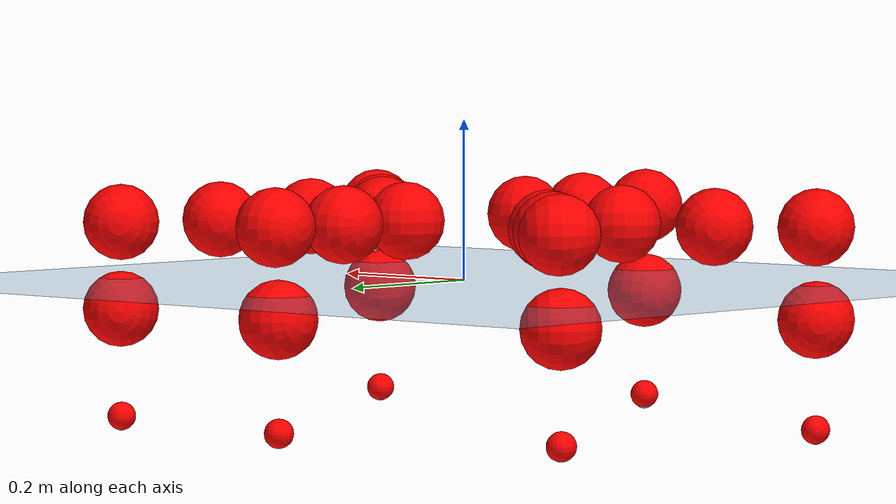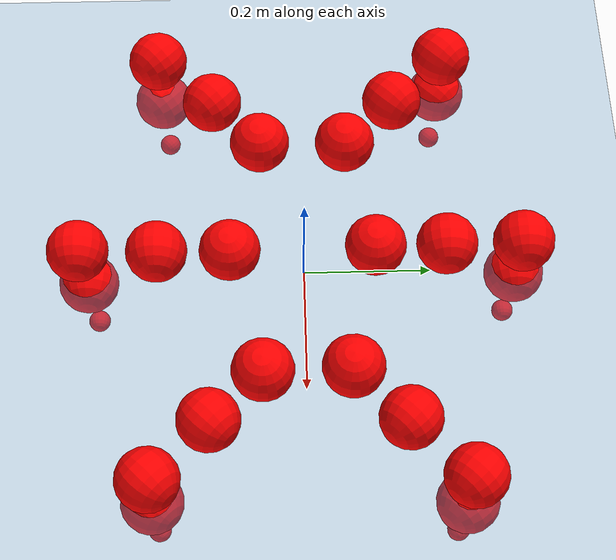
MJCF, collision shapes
<mujoco model="Golem">
  <compiler angle="radian" assetdir="assets" balanceinertia="true" inertiafromgeom="false"/>

  <option timestep="0.005" density="1.2" viscosity="2e-05"/>

  <size nkey="1"/>

  <visual>
    <quality shadowsize="8192"/>
    <map shadowclip="0.5"/>
  </visual>

  <default>
    <default class="/">
      <joint armature="0.01" damping="0.01" frictionloss="0.01"/>
      <geom contype="0" conaffinity="0" group="1" solref="-1000 -80"/>
      <site size="0.01 0.005 0.005" group="5"/>
      <general forcelimited="true" biastype="affine" gainprm="25" biasprm="0 -25 -0.5"/>
      <default class="visual">
        <geom type="mesh" group="2"/>
      </default>
      <default class="collision">
        <geom group="3"/>
      </default>
      <default class="foot">
        <geom size="0.01 0 0" condim="6" group="4" priority="1" solimp="0.015 1 0.01"/>
      </default>
      <default class="reward_collision_sphere">
        <geom group="5" rgba="1 0 0 1"/>
      </default>
    </default>
  </default>

  <asset>
    <texture type="skybox" colorspace="auto" name="//unnamed_texture_0" builtin="gradient" rgb1="0.95 0.95 0.95" rgb2="0.95 0.95 0.95" width="100" height="600"/>
    <texture type="2d" colorspace="auto" name="texplane" builtin="checker" rgb1="0.345 0.575 0.748" rgb2="0.345 0.575 0.748" markrgb="1 1 1" width="512" height="512"/>
    <material name="MatPlane" class="/" texture="texplane" texuniform="true" texrepeat="2 2" specular="0.9"/>
    <mesh name="body" class="/" file="body.stl" scale="0.001 0.001 0.001"/>
    <mesh name="coxa" class="/" file="coxa.stl" scale="0.001 0.001 0.001"/>
    <mesh name="femur" class="/" file="femur.stl" scale="0.001 0.001 0.001"/>
    <mesh name="tibia" class="/" file="tibia.stl" scale="0.001 0.001 0.001"/>
    <mesh name="tarsus" class="/" file="tarsus.stl" scale="0.001 0.001 0.001"/>
  </asset>

  <worldbody>
    <geom name="floor" class="/" size="100 100 0.125" type="plane" group="0" material="MatPlane"/>
    <light name="toplight_shadow" class="/" pos="0 0 5" dir="0.0990148 0.0990148 -0.990148" type="directional" ambient="0.04 0.04 0.04" diffuse="0.55 0.55 0.55" specular="0.12 0.12 0.12"/>
    <light name="toplight_fill" class="/" pos="0 0 5" dir="0.0990148 0.0990148 -0.990148" type="directional" castshadow="false" ambient="0.04 0.04 0.04" diffuse="0.3 0.3 0.3" specular="0.08 0.08 0.08"/>
    <body name="trunk" pos="-0.00115657 0.000177123 -0.00217123" quat="1 -0.000664031 0.000680528 -3.21687e-05">
      <inertial pos="-0.00145711 -0.00297646 0.000919025" quat="0.999967 0.00662686 0.00324111 0.00328805" mass="6.127" diaginertia="0.0299105 0.0192466 0.0223183"/>
      <joint name="//unnamed_joint_0" type="free"/>
      <geom name="//unnamed_geom_1" class="/" pos="0 0 0.0756507" quat="1 0 0 0" type="mesh" rgba="0.9 0.9 0.9 1" mesh="body"/>
      <site name="imu" class="/" pos="0.175817 -0.0134647 0.106533" size="0.0119386"/>
      <camera name="track" class="/" pos="0 -2.27866 0" quat="0.707107 0.707107 0 0" mode="trackcom"/>
      <camera name="ego_camera" class="/" pos="0.163827 0 0.118204" quat="-0.5 -0.5 0.5 0.5"/>
      <body name="coxa_RR" pos="-0.225041 -0.0944797 0.0767012" quat="0.382633 0.000356313 0.000130324 -0.9239">
        <inertial pos="-0.00227538 -0.000489588 -0.00236072" quat="0.999973 0.00730358 0.000288905 -0.00113007" mass="0.339301" diaginertia="0.031323 0.0191673 0.0230464"/>
        <joint name="coxa_joint_RR" class="/" pos="0 0 0" axis="-0.00042445 0.00575336 -0.999983" range="-3.18797 3.10782" armature="0.010471" damping="0" frictionloss="0.0108031"/>
        <geom name="//unnamed_geom_2" class="/" type="mesh" rgba="0.2 0.2 0.2 1" mesh="coxa"/>
        <geom name="//unnamed_geom_3" class="reward_collision_sphere" size="0.0477544" pos="-0.0378061 0 0"/>
        <body name="femur_RR" pos="0.0751144 -0.00356799 -0.00390681" quat="0.499591 -0.49977 0.500952 0.499686">
          <inertial pos="-0.00276804 -0.0014897 -0.00272425" quat="0.999938 -0.00496801 0.00734666 -0.00677555" mass="0.340528" diaginertia="0.0318571 0.0197197 0.0225307"/>
          <joint name="femur_joint_RR" class="/" pos="0 0 0" axis="0.00206586 -0.01558 -0.999876" range="-3.09754 3.13098" armature="0.013536" damping="0.0167829" frictionloss="0.0102475"/>
          <geom name="//unnamed_geom_4" class="/" type="mesh" rgba="0.9 0.9 0.9 1" mesh="femur"/>
          <geom name="//unnamed_geom_5" class="reward_collision_sphere" size="0.0477544"/>
          <body name="tibia_RR" pos="0.000985032 -0.125463 0.0031844" quat="0.000181664 1 0.000239579 -6.92263e-05">
            <inertial pos="0.00192158 0.00259733 -0.00158725" quat="0.99999 -0.00268727 -0.00155206 -0.00331526" mass="0.34932" diaginertia="0.0317146 0.0189158 0.0230296"/>
            <joint name="tibia_joint_RR" class="/" pos="0 0 0" axis="0.00267889 0.00473395 0.999985" stiffness="0.00714829" range="-3.14182 3.13092" armature="0.0124768" damping="0.0017059" frictionloss="0.0110249"/>
            <geom name="//unnamed_geom_6" class="/" type="mesh" rgba="0.2 0.2 0.2 1" mesh="tibia"/>
            <geom name="//unnamed_geom_7" class="reward_collision_sphere" size="0.0477544"/>
            <body name="tarsus_RR" pos="0.113678 0.000457708 -0.000420553" quat="1 -0.000408302 0.000263581 0.000291749">
              <inertial pos="0.0742048 0.00189892 -0.000514766" quat="0.500336 0.49314 0.506987 0.499441" mass="0.343848" diaginertia="0.0313543 0.0186173 0.0236964"/>
              <joint name="tarsus_joint_RR" class="/" pos="0 0 0" axis="-0.0128473 0.0107123 0.99986" range="-3.08764 3.07831" armature="0.0121191" damping="0.00593305" frictionloss="0.0115349"/>
              <geom name="//unnamed_geom_8" class="/" type="mesh" rgba="0.9 0.9 0.9 1" mesh="tarsus"/>
              <geom name="foot_1" class="foot" size="0.012485" pos="0.141143 0 0" quat="0 -0.707107 0 0.707107"/>
              <geom name="//unnamed_geom_10" class="reward_collision_sphere" size="0.0477544"/>
              <geom name="//unnamed_geom_11" class="reward_collision_sphere" size="0.0179079" pos="0.135472 0 0"/>
              <site name="foot_1" class="foot" pos="0.141143 0 0" quat="0 -0.707107 0 0.707107" size="0.0119386"/>
            </body>
          </body>
        </body>
      </body>
      <body name="coxa_RM" pos="0.00128335 -0.152596 0.0810454" quat="0.707264 -3.60488e-05 -0.00116704 -0.706949">
        <inertial pos="0.000517037 -0.00183383 -0.000437294" quat="0.999937 0.00834069 -0.00470349 -0.00590445" mass="0.347147" diaginertia="0.0327756 0.0191855 0.0232561"/>
        <joint name="coxa_joint_RM" class="/" pos="0 0 0" axis="-0.00328035 0.0152162 -0.999879" range="-3.18322 3.17611" armature="0.0115414" damping="0.0238066" frictionloss="0.0111319"/>
        <geom name="//unnamed_geom_12" class="/" type="mesh" rgba="0.2 0.2 0.2 1" mesh="coxa"/>
        <geom name="//unnamed_geom_13" class="reward_collision_sphere" size="0.0477544" pos="-0.0378061 0 0"/>
        <body name="femur_RM" pos="0.0747806 0.000823737 0.000539196" quat="0.500351 -0.50031 0.499705 0.499633">
          <inertial pos="0.00173576 -0.00203857 0.00284295" quat="0.999985 -0.00162506 -0.00265974 -0.00447164" mass="0.337403" diaginertia="0.0311513 0.0190935 0.0236875"/>
          <joint name="femur_joint_RM" class="/" pos="0 0 0" axis="0.009053 0.00636674 -0.999939" stiffness="0.00956634" range="-3.08892 3.11016" armature="0.0135238" damping="0.0265148" frictionloss="0.0125109"/>
          <geom name="//unnamed_geom_14" class="/" type="mesh" rgba="0.9 0.9 0.9 1" mesh="femur"/>
          <geom name="//unnamed_geom_15" class="reward_collision_sphere" size="0.0477544"/>
          <body name="tibia_RM" pos="-0.000584114 -0.120978 -0.00286343" quat="-0.000967674 0.999999 -0.000562491 0.000101415">
            <inertial pos="0.00136484 0.00287602 -0.000690423" quat="1 3.20418e-05 -0.000459419 0.000235863" mass="0.35342" diaginertia="0.0332842 0.0202901 0.0242394"/>
            <joint name="tibia_joint_RM" class="/" pos="0 0 0" axis="0.00453325 0.0062462 0.99997" range="-3.08672 3.15015" armature="0.0108794" damping="0" frictionloss="0.0134026"/>
            <geom name="//unnamed_geom_16" class="/" type="mesh" rgba="0.2 0.2 0.2 1" mesh="tibia"/>
            <geom name="//unnamed_geom_17" class="reward_collision_sphere" size="0.0477544"/>
            <body name="tarsus_RM" pos="0.109821 -0.00397925 0.0015782" quat="1 -0.000526936 0.000692419 -0.000135812">
              <inertial pos="0.0731269 -0.000754556 0.00130965" quat="0.49797 0.499935 0.500423 0.501664" mass="0.353763" diaginertia="0.0334922 0.0197742 0.0245869"/>
              <joint name="tarsus_joint_RM" class="/" pos="0 0 0" axis="0.0107764 -0.0055497 0.999927" range="-3.1254 3.17904" armature="0.0117341" damping="0.00772101" frictionloss="0.0104288"/>
              <geom name="//unnamed_geom_18" class="/" type="mesh" rgba="0.9 0.9 0.9 1" mesh="tarsus"/>
              <geom name="foot_2" class="foot" size="0.0130869" pos="0.141143 0 0" quat="0 -0.707107 0 0.707107"/>
              <geom name="//unnamed_geom_20" class="reward_collision_sphere" size="0.0477544"/>
              <geom name="//unnamed_geom_21" class="reward_collision_sphere" size="0.0179079" pos="0.135472 0 0"/>
              <site name="foot_2" class="foot" pos="0.141143 0 0" quat="0 -0.707107 0 0.707107" size="0.0119386"/>
            </body>
          </body>
        </body>
      </body>
      <body name="coxa_RF" pos="0.228103 -0.0920463 0.076932" quat="0.923807 -0.000653899 -0.000650259 -0.382856">
        <inertial pos="0.00281545 0.00351582 0.00223209" quat="0.999912 -0.0114603 0.00658356 0.00122338" mass="0.336928" diaginertia="0.0314316 0.0201796 0.0242819"/>
        <joint name="coxa_joint_RF" class="/" pos="0 0 0" axis="-0.00529866 0.014404 -0.999882" range="-3.14356 3.15764" armature="0.0113547" damping="0.00659929" frictionloss="0.0124667"/>
        <geom name="//unnamed_geom_22" class="/" type="mesh" rgba="0.2 0.2 0.2 1" mesh="coxa"/>
        <geom name="//unnamed_geom_23" class="reward_collision_sphere" size="0.0477544" pos="-0.0378061 0 0"/>
        <body name="femur_RF" pos="0.0727818 -0.0017232 -0.00178385" quat="0.499942 -0.500089 0.499936 0.500033">
          <inertial pos="0.00189101 -0.000156401 0.000193249" quat="0.999914 -0.00615301 -0.010329 0.00517485" mass="0.346222" diaginertia="0.0316114 0.0203536 0.0237593"/>
          <joint name="femur_joint_RF" class="/" pos="0 0 0" axis="0.00326506 0.00122249 -0.999994" range="-3.16948 3.1845" armature="0.011657" damping="0.00697903" frictionloss="0.0115351"/>
          <geom name="//unnamed_geom_24" class="/" type="mesh" rgba="0.9 0.9 0.9 1" mesh="femur"/>
          <geom name="//unnamed_geom_25" class="reward_collision_sphere" size="0.0477544"/>
          <body name="tibia_RF" pos="-0.000715278 -0.12321 0.0025278" quat="-0.00029418 1 -0.000151367 -0.000319278">
            <inertial pos="0.00114237 -0.00217464 -5.04331e-05" quat="0.999936 -0.00753644 0.00380942 0.00755027" mass="0.324668" diaginertia="0.0320736 0.0187899 0.022887"/>
            <joint name="tibia_joint_RF" class="/" pos="0 0 0" axis="0.000530633 0.00131637 0.999999" range="-3.13892 3.13959" armature="0.0132404" damping="0.00852249" frictionloss="0.0116336"/>
            <geom name="//unnamed_geom_26" class="/" type="mesh" rgba="0.2 0.2 0.2 1" mesh="tibia"/>
            <geom name="//unnamed_geom_27" class="reward_collision_sphere" size="0.0477544"/>
            <body name="tarsus_RF" pos="0.108015 -2.70879e-05 0.00355553" quat="1 3.07007e-05 -0.000926947 0.000304086">
              <inertial pos="0.0786968 0.000784264 0.00261659" quat="0.4898 0.507464 0.504295 0.49826" mass="0.345526" diaginertia="0.0312467 0.0190004 0.0234593"/>
              <joint name="tarsus_joint_RF" class="/" pos="0 0 0" axis="0.000234234 -9.38408e-05 1" range="-3.14942 3.14223" armature="0.0118379" damping="0.000958843" frictionloss="0.0103497"/>
              <geom name="//unnamed_geom_28" class="/" type="mesh" rgba="0.9 0.9 0.9 1" mesh="tarsus"/>
              <geom name="foot_3" class="foot" size="0.0126945" pos="0.141143 0 0" quat="0 -0.707107 0 0.707107"/>
              <geom name="//unnamed_geom_30" class="reward_collision_sphere" size="0.0477544"/>
              <geom name="//unnamed_geom_31" class="reward_collision_sphere" size="0.0179079" pos="0.135472 0 0"/>
              <site name="foot_3" class="foot" pos="0.141143 0 0" quat="0 -0.707107 0 0.707107" size="0.0119386"/>
            </body>
          </body>
        </body>
      </body>
      <body name="coxa_LR" pos="-0.223774 0.0960272 0.075828" quat="0.383483 0.000354787 -0.00055712 0.923548">
        <inertial pos="-0.00159786 -0.00231278 -0.000378334" quat="0.999992 -0.00157378 -0.00326849 0.00164419" mass="0.340258" diaginertia="0.0327825 0.0197539 0.0243966"/>
        <joint name="coxa_joint_LR" class="/" pos="0 0 0" axis="0.0017962 -0.0142555 -0.999897" range="-3.18556 3.19051" armature="0.0103569" damping="0.0298907" frictionloss="0.0130032"/>
        <geom name="//unnamed_geom_32" class="/" type="mesh" rgba="0.2 0.2 0.2 1" mesh="coxa"/>
        <geom name="//unnamed_geom_33" class="reward_collision_sphere" size="0.0477544" pos="-0.0378061 0 0"/>
        <body name="femur_LR" pos="0.0732691 -0.00105395 0.00303591" quat="0.500946 -0.500379 0.498905 0.499768">
          <inertial pos="-0.000927658 -0.00262048 0.00075568" quat="0.99991 -0.00214625 -0.0119265 -0.00574345" mass="0.357899" diaginertia="0.0320431 0.0193889 0.0230014"/>
          <joint name="femur_joint_LR" class="/" pos="0 0 0" axis="0.00179674 0.00143442 0.999997" stiffness="0.0110181" range="-3.08654 3.16726" armature="0.0128323" damping="0.00591097" frictionloss="0.0114209"/>
          <geom name="//unnamed_geom_34" class="/" type="mesh" rgba="0.9 0.9 0.9 1" mesh="femur"/>
          <geom name="//unnamed_geom_35" class="reward_collision_sphere" size="0.0477544"/>
          <body name="tibia_LR" pos="-0.00238679 -0.121122 -0.000403836" quat="-5.30676e-05 0.999999 -0.000286154 0.00101348">
            <inertial pos="0.00217353 -0.000134753 0.00223404" quat="0.999998 0.000619916 0.00142696 0.00109711" mass="0.344088" diaginertia="0.0330202 0.0192702 0.0228235"/>
            <joint name="tibia_joint_LR" class="/" pos="0 0 0" axis="0.00116083 -0.00396086 -0.999991" range="-3.10783 3.14615" armature="0.0103193" damping="0.00902193" frictionloss="0.0113949"/>
            <geom name="//unnamed_geom_36" class="/" type="mesh" rgba="0.2 0.2 0.2 1" mesh="tibia"/>
            <geom name="//unnamed_geom_37" class="reward_collision_sphere" size="0.0477544"/>
            <body name="tarsus_LR" pos="0.108306 0.00192346 -0.00101863" quat="1 0.000496001 0.000559942 0.000176479">
              <inertial pos="0.0760812 0.000114689 -0.00299302" quat="0.49891 0.499898 0.500353 0.500837" mass="0.336655" diaginertia="0.0315186 0.0192428 0.0233573"/>
              <joint name="tarsus_joint_LR" class="/" pos="0 0 0" axis="0.000144121 -0.000173777 -1" range="-3.13165 3.1368" armature="0.0134374" damping="0.0332815" frictionloss="0.0113854"/>
              <geom name="//unnamed_geom_38" class="/" type="mesh" rgba="0.9 0.9 0.9 1" mesh="tarsus"/>
              <geom name="foot_4" class="foot" size="0.012316" pos="0.141143 0 0" quat="0.707107 0 -0.707107 0"/>
              <geom name="//unnamed_geom_40" class="reward_collision_sphere" size="0.0477544"/>
              <geom name="//unnamed_geom_41" class="reward_collision_sphere" size="0.0179079" pos="0.135472 0 0"/>
              <site name="foot_4" class="foot" pos="0.141143 0 0" quat="0.707107 0 -0.707107 0" size="0.0119386"/>
            </body>
          </body>
        </body>
      </body>
      <body name="coxa_LM" pos="-0.00304749 0.148172 0.0810136" quat="0.70674 9.44969e-06 0.000554377 0.707474">
        <inertial pos="-0.000662972 -0.000200616 0.00310879" quat="0.99991 -0.00134666 0.000879968 0.0133356" mass="0.342773" diaginertia="0.0307871 0.0193344 0.0225224"/>
        <joint name="coxa_joint_LM" class="/" pos="0 0 0" axis="0.000398136 0.000684358 -1" stiffness="0.00254739" range="-3.11473 3.14501" armature="0.0116016" damping="0" frictionloss="0.0109369"/>
        <geom name="//unnamed_geom_42" class="/" type="mesh" rgba="0.2 0.2 0.2 1" mesh="coxa"/>
        <geom name="//unnamed_geom_43" class="reward_collision_sphere" size="0.0477544" pos="-0.0378061 0 0"/>
        <body name="femur_LM" pos="0.0723048 0.000445524 -0.000155509" quat="0.500028 -0.500019 0.499983 0.49997">
          <inertial pos="0.00134155 -0.000165242 -0.00208691" quat="0.999909 0.00197847 0.00618085 0.0117906" mass="0.333367" diaginertia="0.0335155 0.0193196 0.0232304"/>
          <joint name="femur_joint_LM" class="/" pos="0 0 0" axis="-0.00225224 0.00964386 0.999951" stiffness="0.00402293" range="-3.17243 3.09033" armature="0.0102818" damping="0.0305706" frictionloss="0.0118309"/>
          <geom name="//unnamed_geom_44" class="/" type="mesh" rgba="0.9 0.9 0.9 1" mesh="femur"/>
          <geom name="//unnamed_geom_45" class="reward_collision_sphere" size="0.0477544"/>
          <body name="tibia_LM" pos="-0.00163252 -0.118528 0.00148975" quat="8.07668e-05 0.999999 -4.96079e-05 -0.00112945">
            <inertial pos="0.00163135 -0.000122807 0.000352904" quat="0.99991 0.0123113 -0.00230991 -0.00486987" mass="0.350452" diaginertia="0.0319402 0.0191663 0.0236785"/>
            <joint name="tibia_joint_LM" class="/" pos="0 0 0" axis="0.000824215 -0.00108944 -0.999999" stiffness="0.00108912" range="-3.08598 3.09055" armature="0.0113839" damping="0.00436181" frictionloss="0.0139523"/>
            <geom name="//unnamed_geom_46" class="/" type="mesh" rgba="0.2 0.2 0.2 1" mesh="tibia"/>
            <geom name="//unnamed_geom_47" class="reward_collision_sphere" size="0.0477544"/>
            <body name="tarsus_LM" pos="0.109504 -0.00121731 -0.00316726" quat="0.999999 -0.00081355 0.00126205 0.000182455">
              <inertial pos="0.0756336 0.000191396 -0.00148828" quat="0.500183 0.499899 0.501252 0.498663" mass="0.352241" diaginertia="0.0320687 0.0191775 0.0232213"/>
              <joint name="tarsus_joint_LM" class="/" pos="0 0 0" axis="0.0100057 0.00811126 -0.999917" range="-3.1294 3.13661" armature="0.0135835" damping="0.00200919" frictionloss="0.0124135"/>
              <geom name="//unnamed_geom_48" class="/" type="mesh" rgba="0.9 0.9 0.9 1" mesh="tarsus"/>
              <geom name="foot_5" class="foot" size="0.0104248" pos="0.141143 0 0" quat="0.707107 0 -0.707107 0"/>
              <geom name="//unnamed_geom_50" class="reward_collision_sphere" size="0.0477544"/>
              <geom name="//unnamed_geom_51" class="reward_collision_sphere" size="0.0179079" pos="0.135472 0 0"/>
              <site name="foot_5" class="foot" pos="0.141143 0 0" quat="0.707107 0 -0.707107 0" size="0.0119386"/>
            </body>
          </body>
        </body>
      </body>
      <body name="coxa_LF" pos="0.225598 0.0955727 0.0784912" quat="0.924163 0.000560471 0.000746244 0.381998">
        <inertial pos="-2.83014e-05 0.00264146 -0.000259054" quat="0.99999 -0.00262333 0.00148544 0.00343907" mass="0.338347" diaginertia="0.0307667 0.0179383 0.0216227"/>
        <joint name="coxa_joint_LF" class="/" pos="0 0 0" axis="-0.000242489 -0.00600608 -0.999982" range="-3.12474 3.14479" armature="0.0131908" damping="0.00566449" frictionloss="0.0120402"/>
        <geom name="//unnamed_geom_52" class="/" type="mesh" rgba="0.2 0.2 0.2 1" mesh="coxa"/>
        <geom name="//unnamed_geom_53" class="reward_collision_sphere" size="0.0477544" pos="-0.0378061 0 0"/>
        <body name="femur_LF" pos="0.0761032 -0.000753078 -0.00340181" quat="0.499541 -0.500647 0.500223 0.499589">
          <inertial pos="-0.00145725 0.00138754 0.000794296" quat="0.999923 0.00686632 -0.00432941 -0.00937163" mass="0.34885" diaginertia="0.0335923 0.0196912 0.0234527"/>
          <joint name="femur_joint_LF" class="/" pos="0 0 0" axis="0.00240525 0.0143976 0.999893" stiffness="0.0220247" range="-3.1848 3.13315" armature="0.0127436" damping="0.0137664" frictionloss="0.0114192"/>
          <geom name="//unnamed_geom_54" class="/" type="mesh" rgba="0.9 0.9 0.9 1" mesh="femur"/>
          <geom name="//unnamed_geom_55" class="reward_collision_sphere" size="0.0477544"/>
          <body name="tibia_LF" pos="0.00274555 -0.12481 -0.000630076" quat="9.18127e-05 1 7.70888e-05 -0.00010919">
            <inertial pos="-0.00165723 -0.00162918 -0.00298954" quat="0.999909 -0.00920978 0.00293557 -0.00936517" mass="0.336906" diaginertia="0.0316495 0.019404 0.0220912"/>
            <joint name="tibia_joint_LF" class="/" pos="0 0 0" axis="-0.0068276 0.0103849 -0.999923" range="-3.11704 3.17098" armature="0.0105903" damping="0.00296515" frictionloss="0.0110732"/>
            <geom name="//unnamed_geom_56" class="/" type="mesh" rgba="0.2 0.2 0.2 1" mesh="tibia"/>
            <geom name="//unnamed_geom_57" class="reward_collision_sphere" size="0.0477544"/>
            <body name="tarsus_LF" pos="0.109576 0.00108295 0.00180886" quat="1 -0.000310219 0.000190874 0.000321297">
              <inertial pos="0.0743995 -0.00188795 -0.00159589" quat="0.500248 0.499621 0.499725 0.500405" mass="0.339933" diaginertia="0.0311822 0.01895 0.0220801"/>
              <joint name="tarsus_joint_LF" class="/" pos="0 0 0" axis="0.00397248 -0.00194548 -0.99999" range="-3.13314 3.1771" armature="0.0132162" damping="0.0277593" frictionloss="0.013098"/>
              <geom name="//unnamed_geom_58" class="/" type="mesh" rgba="0.9 0.9 0.9 1" mesh="tarsus"/>
              <geom name="foot_6" class="foot" size="0.012475" pos="0.141143 0 0" quat="0.707107 0 -0.707107 0"/>
              <geom name="//unnamed_geom_60" class="reward_collision_sphere" size="0.0477544"/>
              <geom name="//unnamed_geom_61" class="reward_collision_sphere" size="0.0179079" pos="0.135472 0 0"/>
              <site name="foot_6" class="foot" pos="0.141143 0 0" quat="0.707107 0 -0.707107 0" size="0.0119386"/>
            </body>
          </body>
        </body>
      </body>
    </body>
  </worldbody>

  <contact>
    <pair class="/" geom1="floor" geom2="foot_1" name="//unnamed_contact_0"/>
    <pair class="/" geom1="floor" geom2="foot_2" name="//unnamed_contact_1"/>
    <pair class="/" geom1="floor" geom2="foot_3" name="//unnamed_contact_2"/>
    <pair class="/" geom1="floor" geom2="foot_4" name="//unnamed_contact_3"/>
    <pair class="/" geom1="floor" geom2="foot_5" name="//unnamed_contact_4"/>
    <pair class="/" geom1="floor" geom2="foot_6" name="//unnamed_contact_5"/>
  </contact>

  <actuator>
    <general name="coxa_joint_RR" class="/" joint="coxa_joint_RR" forcerange="-7.9338 7.9338" gainprm="27.4127" biasprm="0 -27.4127 -0.606653"/>
    <general name="femur_joint_RR" class="/" joint="femur_joint_RR" forcerange="-8.41302 8.41302" gainprm="27.4127" biasprm="0 -27.4127 -0.606653"/>
    <general name="tibia_joint_RR" class="/" joint="tibia_joint_RR" forcerange="-8.75878 8.75878" gainprm="27.4127" biasprm="0 -27.4127 -0.606653"/>
    <general name="tarsus_joint_RR" class="/" joint="tarsus_joint_RR" forcerange="-8.91988 8.91988" gainprm="27.4127" biasprm="0 -27.4127 -0.606653"/>
    <general name="coxa_joint_RM" class="/" joint="coxa_joint_RM" forcerange="-8.54793 8.54793" gainprm="27.4127" biasprm="0 -27.4127 -0.606653"/>
    <general name="femur_joint_RM" class="/" joint="femur_joint_RM" forcerange="-8.41151 8.41151" gainprm="27.4127" biasprm="0 -27.4127 -0.606653"/>
    <general name="tibia_joint_RM" class="/" joint="tibia_joint_RM" forcerange="-8.59378 8.59378" gainprm="27.4127" biasprm="0 -27.4127 -0.606653"/>
    <general name="tarsus_joint_RM" class="/" joint="tarsus_joint_RM" forcerange="-8.54243 8.54243" gainprm="27.4127" biasprm="0 -27.4127 -0.606653"/>
    <general name="coxa_joint_RF" class="/" joint="coxa_joint_RF" forcerange="-8.59823 8.59823" gainprm="27.4127" biasprm="0 -27.4127 -0.606653"/>
    <general name="femur_joint_RF" class="/" joint="femur_joint_RF" forcerange="-8.79907 8.79907" gainprm="27.4127" biasprm="0 -27.4127 -0.606653"/>
    <general name="tibia_joint_RF" class="/" joint="tibia_joint_RF" forcerange="-8.84397 8.84397" gainprm="27.4127" biasprm="0 -27.4127 -0.606653"/>
    <general name="tarsus_joint_RF" class="/" joint="tarsus_joint_RF" forcerange="-7.89796 7.89796" gainprm="27.4127" biasprm="0 -27.4127 -0.606653"/>
    <general name="coxa_joint_LR" class="/" joint="coxa_joint_LR" forcerange="-7.84512 7.84512" gainprm="27.4127" biasprm="0 -27.4127 -0.606653"/>
    <general name="femur_joint_LR" class="/" joint="femur_joint_LR" forcerange="-8.86266 8.86266" gainprm="27.4127" biasprm="0 -27.4127 -0.606653"/>
    <general name="tibia_joint_LR" class="/" joint="tibia_joint_LR" forcerange="-9.29936 9.29936" gainprm="27.4127" biasprm="0 -27.4127 -0.606653"/>
    <general name="tarsus_joint_LR" class="/" joint="tarsus_joint_LR" forcerange="-8.75106 8.75106" gainprm="27.4127" biasprm="0 -27.4127 -0.606653"/>
    <general name="coxa_joint_LM" class="/" joint="coxa_joint_LM" forcerange="-8.99837 8.99837" gainprm="27.4127" biasprm="0 -27.4127 -0.606653"/>
    <general name="femur_joint_LM" class="/" joint="femur_joint_LM" forcerange="-7.95536 7.95536" gainprm="27.4127" biasprm="0 -27.4127 -0.606653"/>
    <general name="tibia_joint_LM" class="/" joint="tibia_joint_LM" forcerange="-8.69343 8.69343" gainprm="27.4127" biasprm="0 -27.4127 -0.606653"/>
    <general name="tarsus_joint_LM" class="/" joint="tarsus_joint_LM" forcerange="-9.31171 9.31171" gainprm="27.4127" biasprm="0 -27.4127 -0.606653"/>
    <general name="coxa_joint_LF" class="/" joint="coxa_joint_LF" forcerange="-7.83567 7.83567" gainprm="27.4127" biasprm="0 -27.4127 -0.606653"/>
    <general name="femur_joint_LF" class="/" joint="femur_joint_LF" forcerange="-8.97146 8.97146" gainprm="27.4127" biasprm="0 -27.4127 -0.606653"/>
    <general name="tibia_joint_LF" class="/" joint="tibia_joint_LF" forcerange="-8.74045 8.74045" gainprm="27.4127" biasprm="0 -27.4127 -0.606653"/>
    <general name="tarsus_joint_LF" class="/" joint="tarsus_joint_LF" forcerange="-9.77926 9.77926" gainprm="27.4127" biasprm="0 -27.4127 -0.606653"/>
  </actuator>

  <sensor>
    <gyro site="imu" name="imu_angular_velocity"/>
    <velocimeter site="imu" name="imu_linear_velocity"/>
    <framelinvel objtype="site" objname="foot_1" name="foot_1_global_linear_velocity"/>
    <framelinvel objtype="site" objname="foot_2" name="foot_2_global_linear_velocity"/>
    <framelinvel objtype="site" objname="foot_3" name="foot_3_global_linear_velocity"/>
    <framelinvel objtype="site" objname="foot_4" name="foot_4_global_linear_velocity"/>
    <framelinvel objtype="site" objname="foot_5" name="foot_5_global_linear_velocity"/>
    <framelinvel objtype="site" objname="foot_6" name="foot_6_global_linear_velocity"/>
  </sensor>

  <keyframe>
    <key name="home" qpos="0 0 0.1457 1 0 0 0 0 0 0 0 0 0 0 0 0 0 0 0 0 0 0 0 0 0 0 0 0 0 0 0"/>
  </keyframe>
</mujoco>
